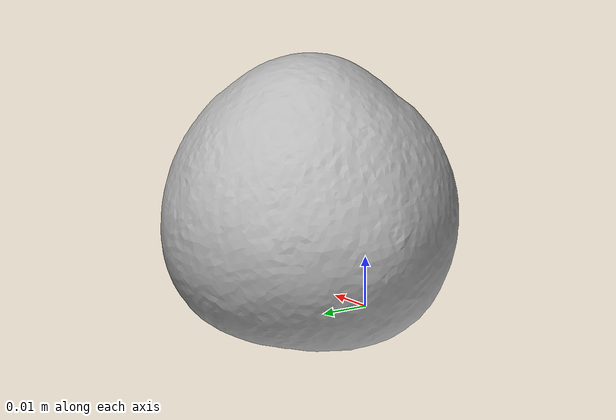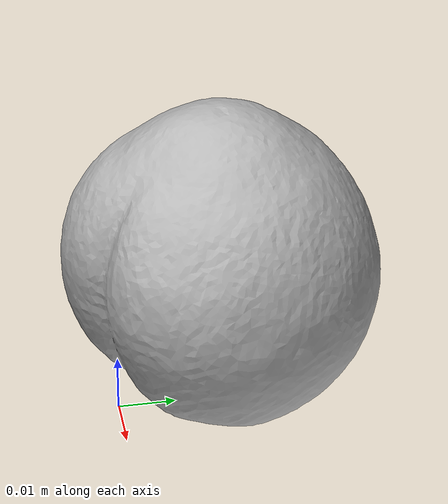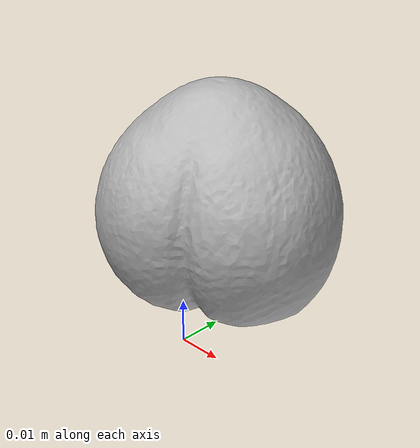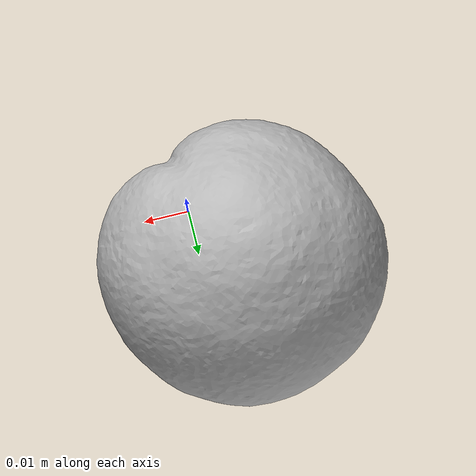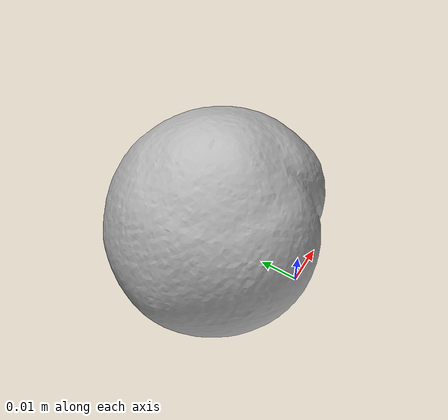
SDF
<?xml version='1.0'?>
<sdf version="1.4">
  <model name="plum">
    <static>false</static>
    <link name="link">
      <inertial>
        <pose>-0.007742611303817824 0.01949223166858234 0.023720337525360756 -1.6903349614702285 -0.8413693132397938 1.824315135233712</pose>
        <mass>8.61776383862375e-05</mass>
        <inertia>
          <ixx>2.7178060074813222e-08</ixx>
          <ixy>-2.8308143756194184e-24</ixy>
          <ixz>2.520433697407622e-24</ixz>
          <iyy>2.621085558369001e-08</iyy>
          <iyz>1.945384566713743e-24</iyz>
          <izz>2.5065263854215248e-08</izz>
        </inertia>
      </inertial>
      <collision name="collision">
        <geometry>
          <mesh>
            <!-- Use a downsampled mesh for collisions -->
            <uri>model://018_plum/google_16k/018_plum.obj</uri>
            </mesh>
        </geometry>
        <surface>
          <friction>
            <ode>
              <mu>0.9</mu>
              <mu2>0.9</mu2>
            </ode>
          </friction>
          <contact>
            <ode>
              <kp>1000000000000.0</kp>
              <kd>1</kd>
              <min_depth>0.0001</min_depth>
              <max_vel>0.01</max_vel>
            </ode>
          </contact>
          <bounce>
            <restitution_coefficient>0.1</restitution_coefficient>
            <threshold>1000.0</threshold>
          </bounce>
        </surface>
      </collision>
      <visual name="visual">
        <geometry>
          <mesh>
            <uri>model://018_plum/google_16k/018_plum.dae</uri>
            </mesh>
        </geometry>
      </visual>
    </link>
  </model>
</sdf>
